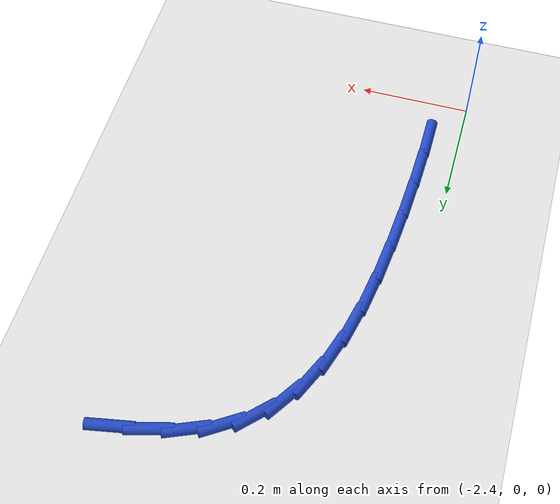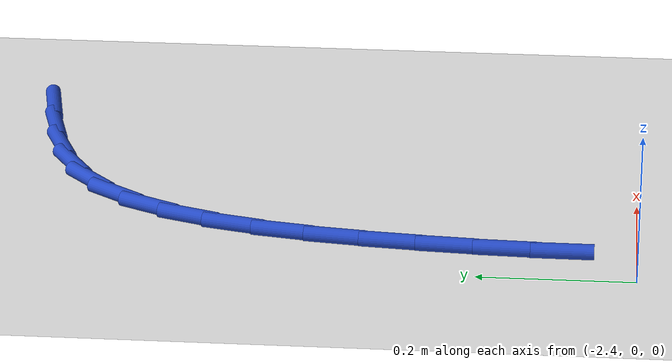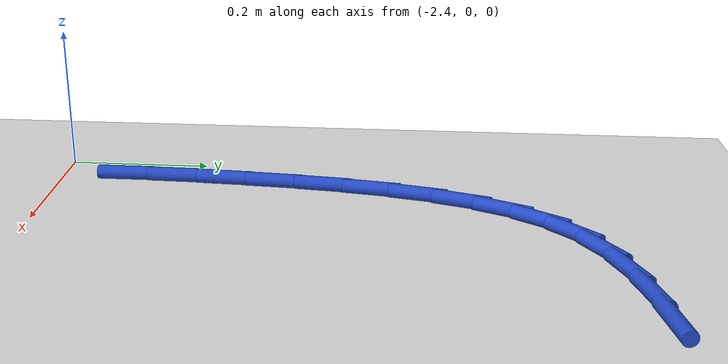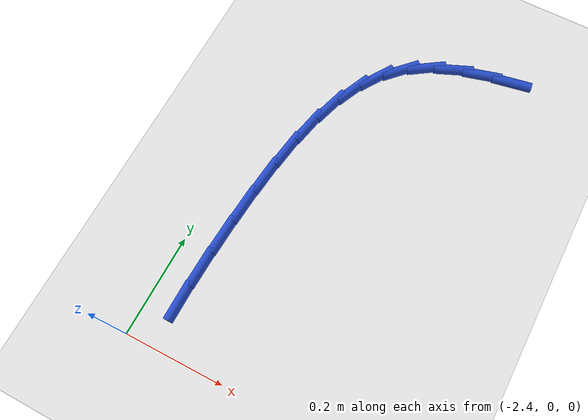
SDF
<sdf version="1.6">
 <world name="default">
  <model name="ground_plane">
   <static>1</static>
   <link name="link">
    <collision name="collision">
     <geometry><plane><normal>0 0 1</normal><size>100 100</size></plane></geometry>
     <surface><friction><ode><mu>100</mu><mu2>50</mu2></ode></friction></surface>
    </collision>
    <visual name="visual">
     <cast_shadows>0</cast_shadows>
     <geometry><plane><normal>0 0 1</normal><size>100 100</size></plane></geometry>
     <material>
      <script><uri>file://media/materials/scripts/gazebo.material</uri><name>Gazebo/WhiteGlow</name></script>
     </material>
    </visual>
   </link>
  </model>
  <model name="line">
   <link name="link_46">
    <pose>-1.979520979009109 0.7853230244050069 0.01 0 1.57 0.18128929300986674</pose>
    <collision name="collision">
     <geometry><cylinder><radius>0.01</radius><length>0.08</length></cylinder></geometry>
    </collision>
    <visual name="visual">
     <material>
      <script><name>Gazebo/Blue</name><uri>file://media/materials/scripts/gazebo.material</uri></script>
     </material>
     <geometry><cylinder><radius>0.01</radius><length>0.08</length></cylinder></geometry>
    </visual>
   </link>
   <link name="link_47">
    <pose>-2.040239448296597 0.7741932180152735 0.01 0 1.57 0.26759463325341853</pose>
    <collision name="collision">
     <geometry><cylinder><radius>0.01</radius><length>0.08</length></cylinder></geometry>
    </collision>
    <visual name="visual">
     <material>
      <script><name>Gazebo/Blue</name><uri>file://media/materials/scripts/gazebo.material</uri></script>
     </material>
     <geometry><cylinder><radius>0.01</radius><length>0.08</length></cylinder></geometry>
    </visual>
   </link>
   <link name="link_48">
    <pose>-2.0968224969995224 0.7586798295377373 0.01 0 1.57 0.3988403922817467</pose>
    <collision name="collision">
     <geometry><cylinder><radius>0.01</radius><length>0.08</length></cylinder></geometry>
    </collision>
    <visual name="visual">
     <material>
      <script><name>Gazebo/Blue</name><uri>file://media/materials/scripts/gazebo.material</uri></script>
     </material>
     <geometry><cylinder><radius>0.01</radius><length>0.08</length></cylinder></geometry>
    </visual>
   </link>
   <link name="link_49">
    <pose>-2.147973403548475 0.737123456669065 0.01 0 1.57 0.5824348201196183</pose>
    <collision name="collision">
     <geometry><cylinder><radius>0.01</radius><length>0.08</length></cylinder></geometry>
    </collision>
    <visual name="visual">
     <material>
      <script><name>Gazebo/Blue</name><uri>file://media/materials/scripts/gazebo.material</uri></script>
     </material>
     <geometry><cylinder><radius>0.01</radius><length>0.08</length></cylinder></geometry>
    </visual>
   </link>
   <link name="link_50">
    <pose>-2.1923954487479134 0.7078647001543821 0.01 0 1.57 0.8033802011906745</pose>
    <collision name="collision">
     <geometry><cylinder><radius>0.01</radius><length>0.08</length></cylinder></geometry>
    </collision>
    <visual name="visual">
     <material>
      <script><name>Gazebo/Blue</name><uri>file://media/materials/scripts/gazebo.material</uri></script>
     </material>
     <geometry><cylinder><radius>0.01</radius><length>0.08</length></cylinder></geometry>
    </visual>
   </link>
   <link name="link_51">
    <pose>-2.229175830208472 0.6697371767126213 0.01 0 1.57 1.0007626891125723</pose>
    <collision name="collision">
     <geometry><cylinder><radius>0.01</radius><length>0.08</length></cylinder></geometry>
    </collision>
    <visual name="visual">
     <material>
      <script><name>Gazebo/Blue</name><uri>file://media/materials/scripts/gazebo.material</uri></script>
     </material>
     <geometry><cylinder><radius>0.01</radius><length>0.08</length></cylinder></geometry>
    </visual>
   </link>
   <link name="link_52">
    <pose>-2.258853678568137 0.6234390376802678 0.01 0 1.57 1.1564077747914452</pose>
    <collision name="collision">
     <geometry><cylinder><radius>0.01</radius><length>0.08</length></cylinder></geometry>
    </collision>
    <visual name="visual">
     <material>
      <script><name>Gazebo/Blue</name><uri>file://media/materials/scripts/gazebo.material</uri></script>
     </material>
     <geometry><cylinder><radius>0.01</radius><length>0.08</length></cylinder></geometry>
    </visual>
   </link>
   <link name="link_53">
    <pose>-2.2823113037775724 0.5701091363383655 0.01 0 1.57 1.2738821806414924</pose>
    <collision name="collision">
     <geometry><cylinder><radius>0.01</radius><length>0.08</length></cylinder></geometry>
    </collision>
    <visual name="visual">
     <material>
      <script><name>Gazebo/Blue</name><uri>file://media/materials/scripts/gazebo.material</uri></script>
     </material>
     <geometry><cylinder><radius>0.01</radius><length>0.08</length></cylinder></geometry>
    </visual>
   </link>
   <link name="link_54">
    <pose>-2.300431015787444 0.5108863259679576 0.01 0 1.57 1.360378873711259</pose>
    <collision name="collision">
     <geometry><cylinder><radius>0.01</radius><length>0.08</length></cylinder></geometry>
    </collision>
    <visual name="visual">
     <material>
      <script><name>Gazebo/Blue</name><uri>file://media/materials/scripts/gazebo.material</uri></script>
     </material>
     <geometry><cylinder><radius>0.01</radius><length>0.08</length></cylinder></geometry>
    </visual>
   </link>
   <link name="link_55">
    <pose>-2.3140951245484165 0.4469094598500887 0.01 0 1.57 1.4226008924238713</pose>
    <collision name="collision">
     <geometry><cylinder><radius>0.01</radius><length>0.08</length></cylinder></geometry>
    </collision>
    <visual name="visual">
     <material>
      <script><name>Gazebo/Blue</name><uri>file://media/materials/scripts/gazebo.material</uri></script>
     </material>
     <geometry><cylinder><radius>0.01</radius><length>0.08</length></cylinder></geometry>
    </visual>
   </link>
   <link name="link_56">
    <pose>-2.3241859400111564 0.3793173912658017 0.01 0 1.57 1.4655776788550205</pose>
    <collision name="collision">
     <geometry><cylinder><radius>0.01</radius><length>0.08</length></cylinder></geometry>
    </collision>
    <visual name="visual">
     <material>
      <script><name>Gazebo/Blue</name><uri>file://media/materials/scripts/gazebo.material</uri></script>
     </material>
     <geometry><cylinder><radius>0.01</radius><length>0.08</length></cylinder></geometry>
    </visual>
   </link>
   <link name="link_57">
    <pose>-2.3315857721263287 0.30924897349614133 0.01 0 1.57 1.4931460075167757</pose>
    <collision name="collision">
     <geometry><cylinder><radius>0.01</radius><length>0.08</length></cylinder></geometry>
    </collision>
    <visual name="visual">
     <material>
      <script><name>Gazebo/Blue</name><uri>file://media/materials/scripts/gazebo.material</uri></script>
     </material>
     <geometry><cylinder><radius>0.01</radius><length>0.08</length></cylinder></geometry>
    </visual>
   </link>
   <link name="link_58">
    <pose>-2.337143353759873 0.23782097105945102 0.01 0 1.57 1.5154438357013016</pose>
    <collision name="collision">
     <geometry><cylinder><radius>0.01</radius><length>0.08</length></cylinder></geometry>
    </collision>
    <visual name="visual">
     <material>
      <script><name>Gazebo/Blue</name><uri>file://media/materials/scripts/gazebo.material</uri></script>
     </material>
     <geometry><cylinder><radius>0.01</radius><length>0.08</length></cylinder></geometry>
    </visual>
   </link>
   <link name="link_59">
    <pose>-2.341135418888145 0.1657738576841005 0.01 0 1.57 1.5400144291781965</pose>
    <collision name="collision">
     <geometry><cylinder><radius>0.01</radius><length>0.08</length></cylinder></geometry>
    </collision>
    <visual name="visual">
     <material>
      <script><name>Gazebo/Blue</name><uri>file://media/materials/scripts/gazebo.material</uri></script>
     </material>
     <geometry><cylinder><radius>0.01</radius><length>0.08</length></cylinder></geometry>
    </visual>
   </link>
   <link name="link_60">
    <pose>-2.3433598297107454 0.09353308019464059 0.01 0 1.57 1.5674659319394815</pose>
    <collision name="collision">
     <geometry><cylinder><radius>0.01</radius><length>0.08</length></cylinder></geometry>
    </collision>
    <visual name="visual">
     <material>
      <script><name>Gazebo/Blue</name><uri>file://media/materials/scripts/gazebo.material</uri></script>
     </material>
     <geometry><cylinder><radius>0.01</radius><length>0.08</length></cylinder></geometry>
    </visual>
   </link>
  </model>
 </world>
</sdf>
